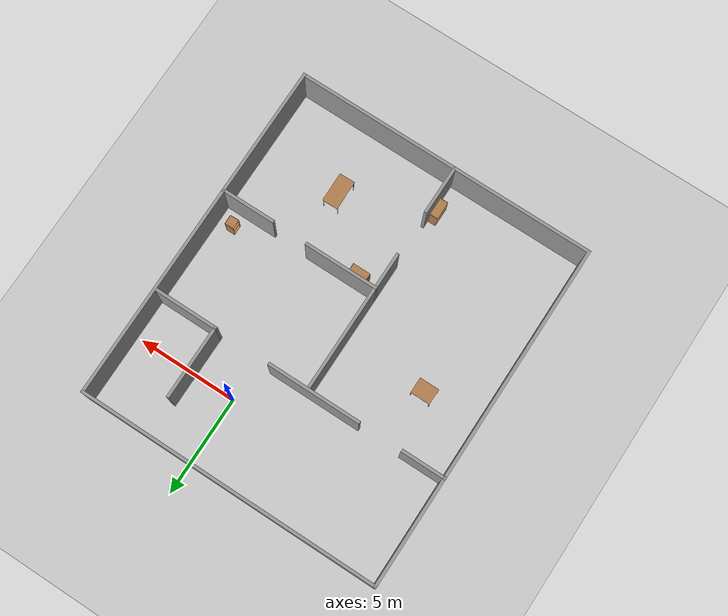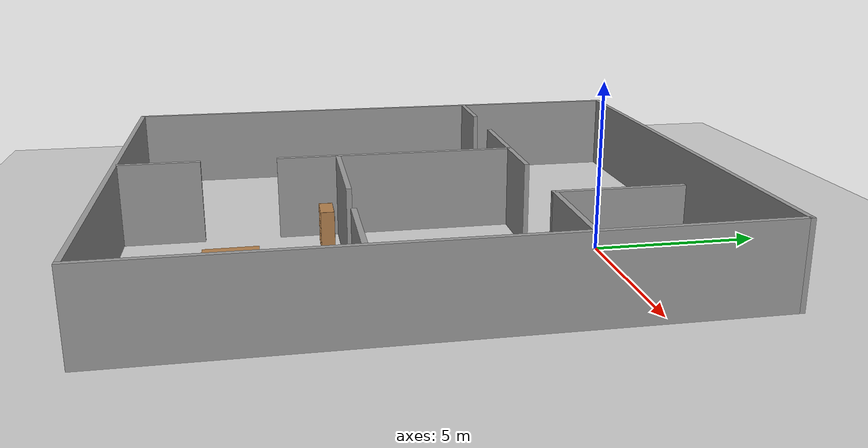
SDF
<sdf version="1.6">
 <world name="default">
  <model name="ground_plane">
   <static>1</static>
   <link name="link">
    <collision name="collision">
     <geometry><plane><normal>0 0 1</normal><size>100 100</size></plane></geometry>
     <surface><friction><ode><mu>100</mu><mu2>50</mu2></ode></friction></surface>
    </collision>
    <visual name="visual">
     <cast_shadows>0</cast_shadows>
     <geometry><plane><normal>0 0 1</normal><size>100 100</size></plane></geometry>
     <material>
      <script><uri>file://media/materials/scripts/gazebo.material</uri><name>Gazebo/Grey</name></script>
     </material>
    </visual>
    <velocity_decay><linear>0</linear><angular>0</angular></velocity_decay>
   </link>
  </model>
  <model name="cabinet_0">
   <static>0</static>
   <link name="cabinet_bottom_plate">
    <inertial>
     <pose>0 0 -1 0 -0 0</pose>
     <inertia><ixx>2.05</ixx><ixy>0</ixy><ixz>0</ixz><iyy>2.05</iyy><iyz>0</iyz><izz>2.05</izz></inertia>
     <mass>25</mass>
    </inertial>
    <collision name="cabinet_bottom_plate_geom">
     <pose>0 0 0.01 0 -0 0</pose>
     <geometry><box><size>0.45 0.45 0.02</size></box></geometry>
    </collision>
    <visual name="cabinet_bottom_plate_geom_visual">
     <pose>0 0 0.01 0 -0 0</pose>
     <geometry><box><size>0.45 0.45 0.02</size></box></geometry>
     <material>
      <script><uri>file://media/materials/scripts/gazebo.material</uri><name>Gazebo/Wood</name></script>
     </material>
    </visual>
    <collision name="cabinet_bottom_plate_geom_cabinet_back_plate">
     <pose>0.235 0 0.51 0 -0 0</pose>
     <geometry><box><size>0.02 0.45 1.02</size></box></geometry>
    </collision>
    <visual name="cabinet_bottom_plate_geom_cabinet_back_plate_visual">
     <pose>0.235 0 0.51 0 -0 0</pose>
     <geometry><box><size>0.02 0.45 1.02</size></box></geometry>
     <material>
      <script><uri>file://media/materials/scripts/gazebo.material</uri><name>Gazebo/Wood</name></script>
     </material>
    </visual>
    <collision name="cabinet_bottom_plate_geom_cabinet_left_plate">
     <pose>0 0.235 0.51 0 -0 0</pose>
     <geometry><box><size>0.45 0.02 1.02</size></box></geometry>
    </collision>
    <visual name="cabinet_bottom_plate_geom_cabinet_left_plate_visual">
     <pose>0 0.235 0.51 0 -0 0</pose>
     <geometry><box><size>0.45 0.02 1.02</size></box></geometry>
     <material>
      <script><uri>file://media/materials/scripts/gazebo.material</uri><name>Gazebo/Wood</name></script>
     </material>
    </visual>
    <collision name="cabinet_bottom_plate_geom_cabinet_middle_plate">
     <pose>0 0 0.51 0 -0 0</pose>
     <geometry><box><size>0.45 0.45 0.02</size></box></geometry>
    </collision>
    <visual name="cabinet_bottom_plate_geom_cabinet_middle_plate_visual">
     <pose>0 0 0.51 0 -0 0</pose>
     <geometry><box><size>0.45 0.45 0.02</size></box></geometry>
     <material>
      <script><uri>file://media/materials/scripts/gazebo.material</uri><name>Gazebo/Wood</name></script>
     </material>
    </visual>
    <collision name="cabinet_bottom_plate_geom_cabinet_right_plate">
     <pose>0 -0.235 0.51 0 -0 0</pose>
     <geometry><box><size>0.45 0.02 1.02</size></box></geometry>
    </collision>
    <visual name="cabinet_bottom_plate_geom_cabinet_right_plate_visual">
     <pose>0 -0.235 0.51 0 -0 0</pose>
     <geometry><box><size>0.45 0.02 1.02</size></box></geometry>
     <material>
      <script><uri>file://media/materials/scripts/gazebo.material</uri><name>Gazebo/Wood</name></script>
     </material>
    </visual>
    <collision name="cabinet_bottom_plate_geom_cabinet_top_plate">
     <pose>0 0 1.01 0 -0 0</pose>
     <geometry><box><size>0.45 0.45 0.02</size></box></geometry>
    </collision>
    <visual name="cabinet_bottom_plate_geom_cabinet_top_plate_visual">
     <pose>0 0 1.01 0 -0 0</pose>
     <geometry><box><size>0.45 0.45 0.02</size></box></geometry>
     <material>
      <script><uri>file://media/materials/scripts/gazebo.material</uri><name>Gazebo/Wood</name></script>
     </material>
    </visual>
    <velocity_decay><linear>0</linear><angular>0</angular></velocity_decay>
   </link>
   <pose>4.50468 -6.65182 0 -1e-06 0 0.01487</pose>
  </model>
  <model name="bookshelf_2">
   <static>0</static>
   <link name="link">
    <inertial>
     <mass>1</mass>
     <inertia><ixx>1</ixx><ixy>0</ixy><ixz>0</ixz><iyy>1</iyy><iyz>0</iyz><izz>1</izz></inertia>
    </inertial>
    <collision name="back">
     <pose>0 0.005 0.6 0 -0 0</pose>
     <geometry><box><size>0.9 0.01 1.2</size></box></geometry>
    </collision>
    <visual name="visual1">
     <pose>0 0.005 0.6 0 -0 0</pose>
     <geometry><box><size>0.9 0.01 1.2</size></box></geometry>
     <material>
      <script><uri>file://media/materials/scripts/gazebo.material</uri><name>Gazebo/Wood</name></script>
     </material>
    </visual>
    <collision name="left_side">
     <pose>0.45 -0.195 0.6 0 -0 0</pose>
     <geometry><box><size>0.02 0.4 1.2</size></box></geometry>
    </collision>
    <visual name="visual2">
     <pose>0.45 -0.195 0.6 0 -0 0</pose>
     <geometry><box><size>0.02 0.4 1.2</size></box></geometry>
     <material>
      <script><uri>file://media/materials/scripts/gazebo.material</uri><name>Gazebo/Wood</name></script>
     </material>
    </visual>
    <collision name="right_side">
     <pose>-0.45 -0.195 0.6 0 -0 0</pose>
     <geometry><box><size>0.02 0.4 1.2</size></box></geometry>
    </collision>
    <visual name="visual3">
     <pose>-0.45 -0.195 0.6 0 -0 0</pose>
     <geometry><box><size>0.02 0.4 1.2</size></box></geometry>
     <material>
      <script><uri>file://media/materials/scripts/gazebo.material</uri><name>Gazebo/Wood</name></script>
     </material>
    </visual>
    <collision name="bottom">
     <pose>0 -0.195 0.03 0 -0 0</pose>
     <geometry><box><size>0.88 0.4 0.06</size></box></geometry>
    </collision>
    <visual name="visual4">
     <pose>0 -0.195 0.03 0 -0 0</pose>
     <geometry><box><size>0.88 0.4 0.06</size></box></geometry>
     <material>
      <script><uri>file://media/materials/scripts/gazebo.material</uri><name>Gazebo/Wood</name></script>
     </material>
    </visual>
    <collision name="top">
     <pose>0 -0.195 1.19 0 -0 0</pose>
     <geometry><box><size>0.88 0.4 0.02</size></box></geometry>
    </collision>
    <visual name="visual5">
     <pose>0 -0.195 1.19 0 -0 0</pose>
     <geometry><box><size>0.88 0.4 0.02</size></box></geometry>
     <material>
      <script><uri>file://media/materials/scripts/gazebo.material</uri><name>Gazebo/Wood</name></script>
     </material>
    </visual>
    <collision name="low_shelf">
     <pose>0 -0.195 0.43 0 -0 0</pose>
     <geometry><box><size>0.88 0.4 0.02</size></box></geometry>
    </collision>
    <visual name="visual6">
     <pose>0 -0.195 0.43 0 -0 0</pose>
     <geometry><box><size>0.88 0.4 0.02</size></box></geometry>
     <material>
      <script><uri>file://media/materials/scripts/gazebo.material</uri><name>Gazebo/Wood</name></script>
     </material>
    </visual>
    <collision name="high_shelf">
     <pose>0 -0.195 0.8 0 -0 0</pose>
     <geometry><box><size>0.88 0.4 0.02</size></box></geometry>
    </collision>
    <visual name="visual7">
     <pose>0 -0.195 0.8 0 -0 0</pose>
     <geometry><box><size>0.88 0.4 0.02</size></box></geometry>
     <material>
      <script><uri>file://media/materials/scripts/gazebo.material</uri><name>Gazebo/Wood</name></script>
     </material>
    </visual>
    <velocity_decay><linear>0</linear><angular>0</angular></velocity_decay>
   </link>
   <pose>-2.84756 -12.3107 0 -1.6e-05 0 -1.57079</pose>
  </model>
  <model name="table_0">
   <static>0</static>
   <link name="link">
    <collision name="surface">
     <pose>0 0 1 0 -0 0</pose>
     <geometry><box><size>1.5 0.8 0.03</size></box></geometry>
    </collision>
    <visual name="visual1">
     <pose>0 0 1 0 -0 0</pose>
     <geometry><box><size>1.5 0.8 0.03</size></box></geometry>
     <material>
      <script><uri>file://media/materials/scripts/gazebo.material</uri><name>Gazebo/Wood</name></script>
     </material>
    </visual>
    <collision name="front_left_leg">
     <pose>0.68 0.38 0.5 0 -0 0</pose>
     <geometry><cylinder><radius>0.02</radius><length>1</length></cylinder></geometry>
    </collision>
    <visual name="front_left_leg">
     <pose>0.68 0.38 0.5 0 -0 0</pose>
     <geometry><cylinder><radius>0.02</radius><length>1</length></cylinder></geometry>
     <material>
      <script><uri>file://media/materials/scripts/gazebo.material</uri><name>Gazebo/Grey</name></script>
     </material>
    </visual>
    <collision name="front_right_leg">
     <pose>0.68 -0.38 0.5 0 -0 0</pose>
     <geometry><cylinder><radius>0.02</radius><length>1</length></cylinder></geometry>
    </collision>
    <visual name="front_right_leg">
     <pose>0.68 -0.38 0.5 0 -0 0</pose>
     <geometry><cylinder><radius>0.02</radius><length>1</length></cylinder></geometry>
     <material>
      <script><uri>file://media/materials/scripts/gazebo.material</uri><name>Gazebo/Grey</name></script>
     </material>
    </visual>
    <collision name="back_right_leg">
     <pose>-0.68 -0.38 0.5 0 -0 0</pose>
     <geometry><cylinder><radius>0.02</radius><length>1</length></cylinder></geometry>
    </collision>
    <visual name="back_right_leg">
     <pose>-0.68 -0.38 0.5 0 -0 0</pose>
     <geometry><cylinder><radius>0.02</radius><length>1</length></cylinder></geometry>
     <material>
      <script><uri>file://media/materials/scripts/gazebo.material</uri><name>Gazebo/Grey</name></script>
     </material>
    </visual>
    <collision name="back_left_leg">
     <pose>-0.68 0.38 0.5 0 -0 0</pose>
     <geometry><cylinder><radius>0.02</radius><length>1</length></cylinder></geometry>
    </collision>
    <visual name="back_left_leg">
     <pose>-0.68 0.38 0.5 0 -0 0</pose>
     <geometry><cylinder><radius>0.02</radius><length>1</length></cylinder></geometry>
     <material>
      <script><uri>file://media/materials/scripts/gazebo.material</uri><name>Gazebo/Grey</name></script>
     </material>
    </visual>
    <velocity_decay><linear>0</linear><angular>0</angular></velocity_decay>
    <inertial>
     <inertia><ixx>1</ixx><ixy>0</ixy><ixz>0</ixz><iyy>1</iyy><iyz>0</iyz><izz>1</izz></inertia>
     <mass>1</mass>
    </inertial>
   </link>
   <pose>1.24657 -10.5378 -1e-06 0 1e-06 1.58692</pose>
  </model>
  <model name="bookshelf_3">
   <static>0</static>
   <link name="link">
    <inertial>
     <mass>1</mass>
     <inertia><ixx>1</ixx><ixy>0</ixy><ixz>0</ixz><iyy>1</iyy><iyz>0</iyz><izz>1</izz></inertia>
    </inertial>
    <collision name="back">
     <pose>0 0.005 0.6 0 -0 0</pose>
     <geometry><box><size>0.9 0.01 1.2</size></box></geometry>
    </collision>
    <visual name="visual1">
     <pose>0 0.005 0.6 0 -0 0</pose>
     <geometry><box><size>0.9 0.01 1.2</size></box></geometry>
     <material>
      <script><uri>file://media/materials/scripts/gazebo.material</uri><name>Gazebo/Wood</name></script>
     </material>
    </visual>
    <collision name="left_side">
     <pose>0.45 -0.195 0.6 0 -0 0</pose>
     <geometry><box><size>0.02 0.4 1.2</size></box></geometry>
    </collision>
    <visual name="visual2">
     <pose>0.45 -0.195 0.6 0 -0 0</pose>
     <geometry><box><size>0.02 0.4 1.2</size></box></geometry>
     <material>
      <script><uri>file://media/materials/scripts/gazebo.material</uri><name>Gazebo/Wood</name></script>
     </material>
    </visual>
    <collision name="right_side">
     <pose>-0.45 -0.195 0.6 0 -0 0</pose>
     <geometry><box><size>0.02 0.4 1.2</size></box></geometry>
    </collision>
    <visual name="visual3">
     <pose>-0.45 -0.195 0.6 0 -0 0</pose>
     <geometry><box><size>0.02 0.4 1.2</size></box></geometry>
     <material>
      <script><uri>file://media/materials/scripts/gazebo.material</uri><name>Gazebo/Wood</name></script>
     </material>
    </visual>
    <collision name="bottom">
     <pose>0 -0.195 0.03 0 -0 0</pose>
     <geometry><box><size>0.88 0.4 0.06</size></box></geometry>
    </collision>
    <visual name="visual4">
     <pose>0 -0.195 0.03 0 -0 0</pose>
     <geometry><box><size>0.88 0.4 0.06</size></box></geometry>
     <material>
      <script><uri>file://media/materials/scripts/gazebo.material</uri><name>Gazebo/Wood</name></script>
     </material>
    </visual>
    <collision name="top">
     <pose>0 -0.195 1.19 0 -0 0</pose>
     <geometry><box><size>0.88 0.4 0.02</size></box></geometry>
    </collision>
    <visual name="visual5">
     <pose>0 -0.195 1.19 0 -0 0</pose>
     <geometry><box><size>0.88 0.4 0.02</size></box></geometry>
     <material>
      <script><uri>file://media/materials/scripts/gazebo.material</uri><name>Gazebo/Wood</name></script>
     </material>
    </visual>
    <collision name="low_shelf">
     <pose>0 -0.195 0.43 0 -0 0</pose>
     <geometry><box><size>0.88 0.4 0.02</size></box></geometry>
    </collision>
    <visual name="visual6">
     <pose>0 -0.195 0.43 0 -0 0</pose>
     <geometry><box><size>0.88 0.4 0.02</size></box></geometry>
     <material>
      <script><uri>file://media/materials/scripts/gazebo.material</uri><name>Gazebo/Wood</name></script>
     </material>
    </visual>
    <collision name="high_shelf">
     <pose>0 -0.195 0.8 0 -0 0</pose>
     <geometry><box><size>0.88 0.4 0.02</size></box></geometry>
    </collision>
    <visual name="visual7">
     <pose>0 -0.195 0.8 0 -0 0</pose>
     <geometry><box><size>0.88 0.4 0.02</size></box></geometry>
     <material>
      <script><uri>file://media/materials/scripts/gazebo.material</uri><name>Gazebo/Wood</name></script>
     </material>
    </visual>
    <velocity_decay><linear>0</linear><angular>0</angular></velocity_decay>
   </link>
   <pose>-1.6513 -7.6424 1e-06 -3.9e-05 -2e-06 0</pose>
  </model>
  <model name="home_walls">
   <pose>-2.23267 -5.22797 0 0 -0 0</pose>
   <link name="Wall_10">
    <collision name="Wall_10_Collision">
     <geometry><box><size>15.25 0.15 2.5</size></box></geometry>
     <pose>0 0 1.25 0 -0 0</pose>
    </collision>
    <visual name="Wall_10_Visual">
     <pose>0 0 1.25 0 -0 0</pose>
     <geometry><box><size>15.25 0.15 2.5</size></box></geometry>
     <material>
      <script><uri>file://media/materials/scripts/gazebo.material</uri><name>Gazebo/Grey</name></script>
      <ambient>1 1 1 1</ambient>
     </material>
     <meta><layer>0</layer></meta>
    </visual>
    <pose>0 8.675 0 0 -0 3.14159</pose>
   </link>
   <link name="Wall_14">
    <collision name="Wall_14_Collision">
     <geometry><box><size>3.25 0.15 2.5</size></box></geometry>
     <pose>0 0 1.25 0 -0 0</pose>
    </collision>
    <visual name="Wall_14_Visual">
     <pose>0 0 1.25 0 -0 0</pose>
     <geometry><box><size>3.25 0.15 2.5</size></box></geometry>
     <material>
      <script><uri>file://media/materials/scripts/gazebo.material</uri><name>Gazebo/Grey</name></script>
      <ambient>1 1 1 1</ambient>
     </material>
     <meta><layer>0</layer></meta>
    </visual>
    <pose>5.88616 3.20782 0 0 -0 0</pose>
   </link>
   <link name="Wall_16">
    <collision name="Wall_16_Collision">
     <geometry><box><size>3.75 0.15 2.5</size></box></geometry>
     <pose>0 0 1.25 0 -0 0</pose>
    </collision>
    <visual name="Wall_16_Visual">
     <pose>0 0 1.25 0 -0 0</pose>
     <geometry><box><size>3.75 0.15 2.5</size></box></geometry>
     <material>
      <script><uri>file://media/materials/scripts/gazebo.material</uri><name>Gazebo/Grey</name></script>
      <ambient>1 1 1 1</ambient>
     </material>
     <meta><layer>0</layer></meta>
    </visual>
    <pose>4.33616 5.00782 0 0 -0 1.5708</pose>
   </link>
   <link name="Wall_18">
    <collision name="Wall_18_Collision">
     <geometry><box><size>4.75 0.15 2.5</size></box></geometry>
     <pose>0 0 1.25 0 -0 0</pose>
    </collision>
    <visual name="Wall_18_Visual">
     <pose>0 0 1.25 0 -0 0</pose>
     <geometry><box><size>4.75 0.15 2.5</size></box></geometry>
     <material>
      <script><uri>file://media/materials/scripts/gazebo.material</uri><name>Gazebo/Grey</name></script>
      <ambient>1 1 1 1</ambient>
     </material>
     <meta><layer>0</layer></meta>
    </visual>
    <pose>-0.848613 3.23707 0 0 -0 3.14159</pose>
   </link>
   <link name="Wall_20">
    <collision name="Wall_20_Collision">
     <geometry><box><size>2.25 0.15 2.5</size></box></geometry>
     <pose>0 0 1.25 0 -0 0</pose>
    </collision>
    <visual name="Wall_20_Visual">
     <pose>0 0 1.25 0 -0 0</pose>
     <geometry><box><size>2.25 0.15 2.5</size></box></geometry>
     <material>
      <script><uri>file://media/materials/scripts/gazebo.material</uri><name>Gazebo/Grey</name></script>
      <ambient>1 1 1 1</ambient>
     </material>
     <meta><layer>0</layer></meta>
    </visual>
    <pose>-6.48476 3.23707 0 0 -0 0</pose>
   </link>
   <link name="Wall_25">
    <collision name="Wall_25_Collision">
     <geometry><box><size>2.5 0.15 2.5</size></box></geometry>
     <pose>0 0 1.25 0 -0 0</pose>
    </collision>
    <visual name="Wall_25_Visual">
     <pose>0 0 1.25 0 -0 0</pose>
     <geometry><box><size>2.5 0.15 2.5</size></box></geometry>
     <material>
      <script><uri>file://media/materials/scripts/gazebo.material</uri><name>Gazebo/Grey</name></script>
      <ambient>1 1 1 1</ambient>
     </material>
     <meta><layer>0</layer></meta>
    </visual>
    <pose>-0.52981 -7.47512 0 0 -0 1.5708</pose>
   </link>
   <link name="Wall_27">
    <collision name="Wall_27_Collision">
     <geometry><box><size>7.25 0.15 2.5</size></box></geometry>
     <pose>0 0 1.25 0 -0 0</pose>
    </collision>
    <visual name="Wall_27_Visual">
     <pose>0 0 1.25 0 -0 0</pose>
     <geometry><box><size>7.25 0.15 2.5</size></box></geometry>
     <material>
      <script><uri>file://media/materials/scripts/gazebo.material</uri><name>Gazebo/Grey</name></script>
      <ambient>1 1 1 1</ambient>
     </material>
     <meta><layer>0</layer></meta>
    </visual>
    <pose>-0.52981 -0.359395 0 0 -0 1.5708</pose>
   </link>
   <link name="Wall_29">
    <collision name="Wall_29_Collision">
     <geometry><box><size>3.75 0.15 2.5</size></box></geometry>
     <pose>0 0 1.25 0 -0 0</pose>
    </collision>
    <visual name="Wall_29_Visual">
     <pose>0 0 1.25 0 -0 0</pose>
     <geometry><box><size>3.75 0.15 2.5</size></box></geometry>
     <material>
      <script><uri>file://media/materials/scripts/gazebo.material</uri><name>Gazebo/Grey</name></script>
      <ambient>1 1 1 1</ambient>
     </material>
     <meta><layer>0</layer></meta>
    </visual>
    <pose>1.27019 -2.14047 0 0 -0 0</pose>
   </link>
   <link name="Wall_35">
    <collision name="Wall_35_Collision">
     <geometry><box><size>2.75 0.15 2.5</size></box></geometry>
     <pose>0 0 1.25 0 -0 0</pose>
    </collision>
    <visual name="Wall_35_Visual">
     <pose>0 0 1.25 0 -0 0</pose>
     <geometry><box><size>2.75 0.15 2.5</size></box></geometry>
     <material>
      <script><uri>file://media/materials/scripts/gazebo.material</uri><name>Gazebo/Grey</name></script>
      <ambient>1 1 1 1</ambient>
     </material>
     <meta><layer>0</layer></meta>
    </visual>
    <pose>6.24205 -2.17585 0 0 -0 0</pose>
   </link>
   <link name="Wall_7">
    <collision name="Wall_7_Collision">
     <geometry><box><size>17.5 0.15 2.5</size></box></geometry>
     <pose>0 0 1.25 0 -0 0</pose>
    </collision>
    <visual name="Wall_7_Visual">
     <pose>0 0 1.25 0 -0 0</pose>
     <geometry><box><size>17.5 0.15 2.5</size></box></geometry>
     <material>
      <script><uri>file://media/materials/scripts/gazebo.material</uri><name>Gazebo/Grey</name></script>
      <ambient>1 1 1 1</ambient>
     </material>
     <meta><layer>0</layer></meta>
    </visual>
    <pose>-7.55 0 0 0 0 -1.5708</pose>
   </link>
   <link name="Wall_8">
    <collision name="Wall_8_Collision">
     <geometry><box><size>15.25 0.15 2.5</size></box></geometry>
     <pose>0 0 1.25 0 -0 0</pose>
    </collision>
    <visual name="Wall_8_Visual">
     <pose>0 0 1.25 0 -0 0</pose>
     <geometry><box><size>15.25 0.15 2.5</size></box></geometry>
     <material>
      <script><uri>file://media/materials/scripts/gazebo.material</uri><name>Gazebo/Grey</name></script>
      <ambient>1 1 1 1</ambient>
     </material>
     <meta><layer>0</layer></meta>
    </visual>
    <pose>0 -8.675 0 0 -0 0</pose>
   </link>
   <link name="Wall_9">
    <collision name="Wall_9_Collision">
     <geometry><box><size>17.5 0.15 2.5</size></box></geometry>
     <pose>0 0 1.25 0 -0 0</pose>
    </collision>
    <visual name="Wall_9_Visual">
     <pose>0 0 1.25 0 -0 0</pose>
     <geometry><box><size>17.5 0.15 2.5</size></box></geometry>
     <material>
      <script><uri>file://media/materials/scripts/gazebo.material</uri><name>Gazebo/Grey</name></script>
      <ambient>1 1 1 1</ambient>
     </material>
     <meta><layer>0</layer></meta>
    </visual>
    <pose>7.55 0 0 0 -0 1.5708</pose>
   </link>
   <static>1</static>
  </model>
  <model name="table_2">
   <static>1</static>
   <link name="link">
    <collision name="surface">
     <pose>0 0 0.8 0 -0 0</pose>
     <geometry><box><size>1 0.8 0.03</size></box></geometry>
    </collision>
    <visual name="visual1">
     <pose>0 0 0.8 0 -0 0</pose>
     <geometry><box><size>1 0.8 0.03</size></box></geometry>
     <material>
      <script><uri>file://media/materials/scripts/gazebo.material</uri><name>Gazebo/Wood</name></script>
     </material>
    </visual>
    <collision name="front_left_leg">
     <pose>0.48 0.38 0.4 0 -0 0</pose>
     <geometry><cylinder><radius>0.02</radius><length>0.8</length></cylinder></geometry>
    </collision>
    <visual name="front_left_leg">
     <pose>0.48 0.38 0.4 0 -0 0</pose>
     <geometry><cylinder><radius>0.02</radius><length>0.8</length></cylinder></geometry>
     <material>
      <script><uri>file://media/materials/scripts/gazebo.material</uri><name>Gazebo/Grey</name></script>
     </material>
    </visual>
    <collision name="front_right_leg">
     <pose>0.48 -0.38 0.4 0 -0 0</pose>
     <geometry><cylinder><radius>0.02</radius><length>0.8</length></cylinder></geometry>
    </collision>
    <visual name="front_right_leg">
     <pose>0.48 -0.38 0.4 0 -0 0</pose>
     <geometry><cylinder><radius>0.02</radius><length>0.8</length></cylinder></geometry>
     <material>
      <script><uri>file://media/materials/scripts/gazebo.material</uri><name>Gazebo/Grey</name></script>
     </material>
    </visual>
    <collision name="back_right_leg">
     <pose>-0.48 -0.38 0.4 0 -0 0</pose>
     <geometry><cylinder><radius>0.02</radius><length>0.8</length></cylinder></geometry>
    </collision>
    <visual name="back_right_leg">
     <pose>-0.48 -0.38 0.4 0 -0 0</pose>
     <geometry><cylinder><radius>0.02</radius><length>0.8</length></cylinder></geometry>
     <material>
      <script><uri>file://media/materials/scripts/gazebo.material</uri><name>Gazebo/Grey</name></script>
     </material>
    </visual>
    <collision name="back_left_leg">
     <pose>-0.48 0.38 0.4 0 -0 0</pose>
     <geometry><cylinder><radius>0.02</radius><length>0.8</length></cylinder></geometry>
    </collision>
    <visual name="back_left_leg">
     <pose>-0.48 0.38 0.4 0 -0 0</pose>
     <geometry><cylinder><radius>0.02</radius><length>0.8</length></cylinder></geometry>
     <material>
      <script><uri>file://media/materials/scripts/gazebo.material</uri><name>Gazebo/Grey</name></script>
     </material>
    </visual>
    <velocity_decay><linear>0</linear><angular>0</angular></velocity_decay>
   </link>
   <pose>-7.00742 -4.96079 0 0 -0 0</pose>
  </model>
 </world>
</sdf>
